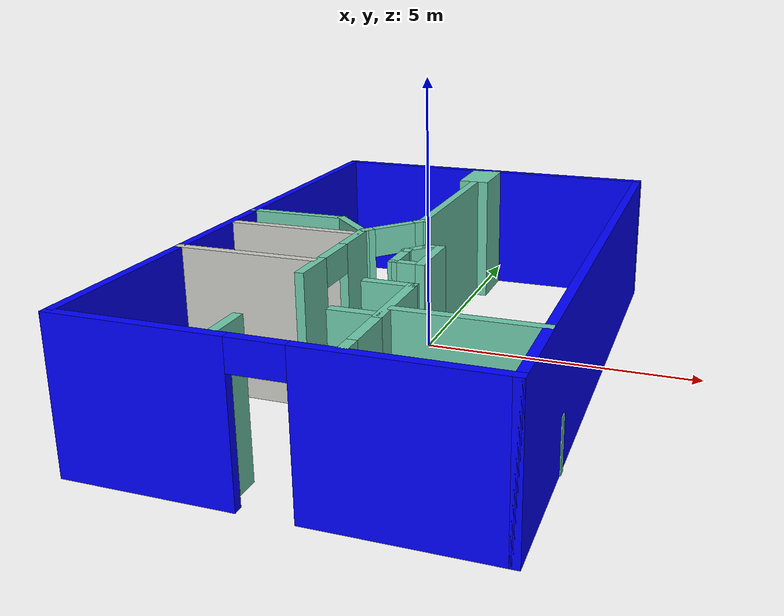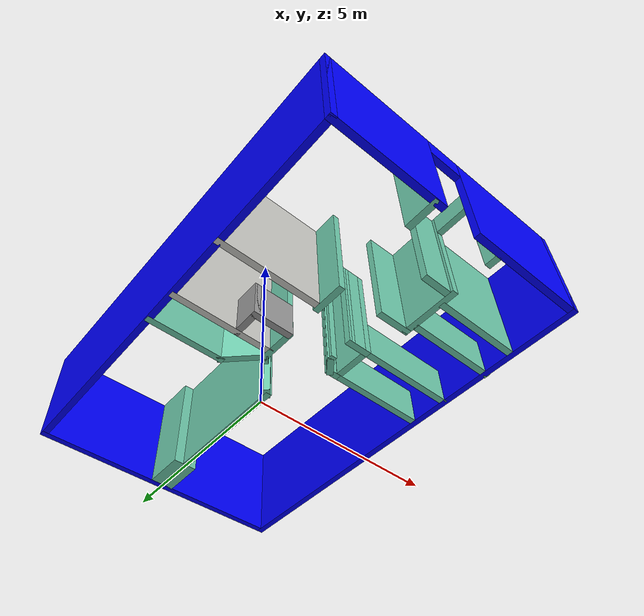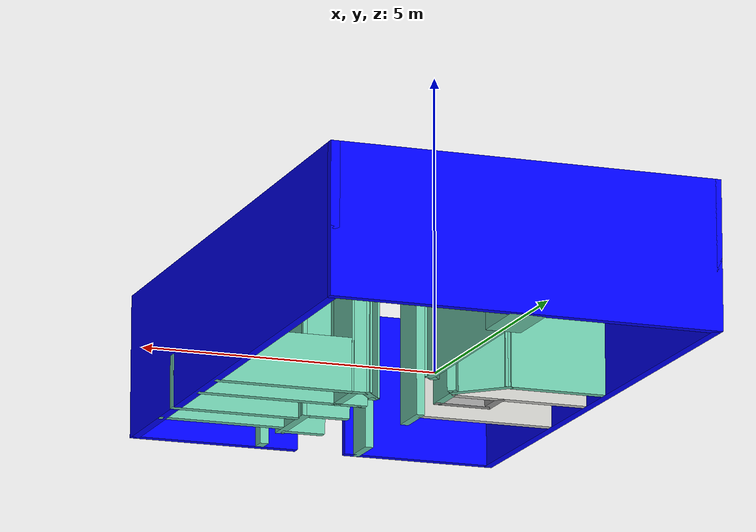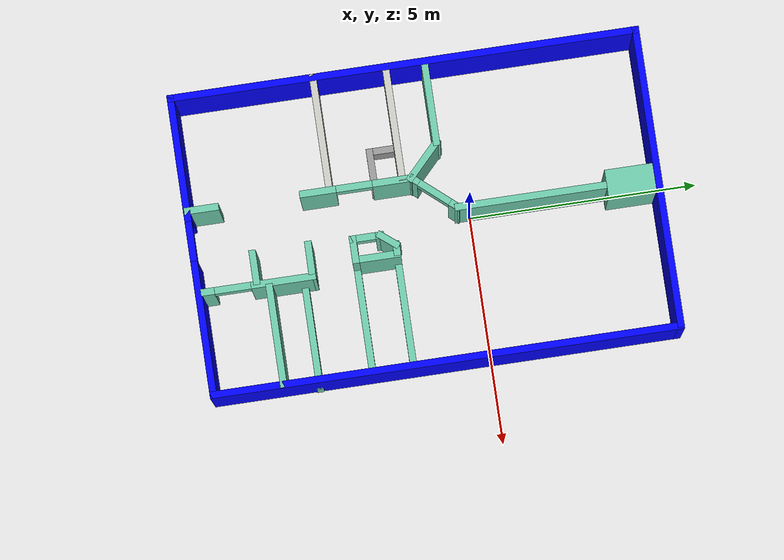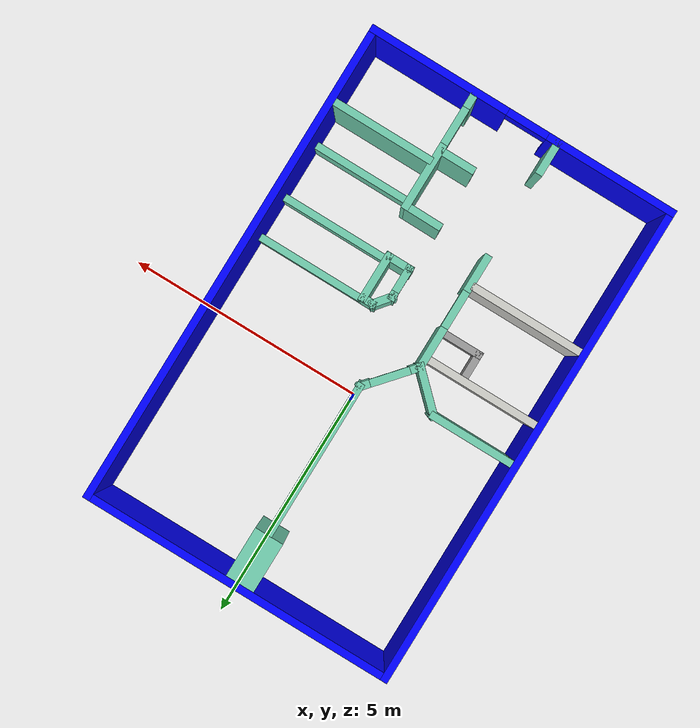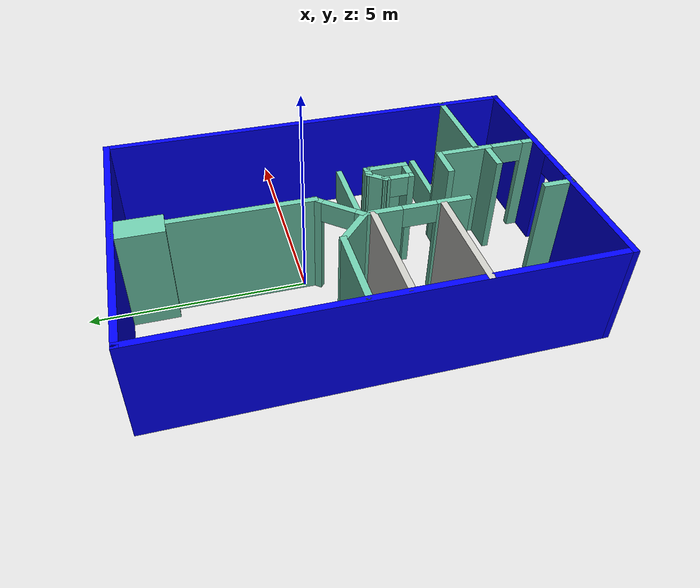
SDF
<?xml version='1.0'?>
<sdf version='1.6'>
  <model name='myApartment'>
    <pose frame=''>-0.012813 -0.95908 0 0 -0 0</pose>
    <link name='Wall_43'>
      <pose frame=''>-0.008813 -5.05 0 0 -0 0</pose>
      <visual name='Wall_43_Visual_0'>
        <pose frame=''>-1.91902 0 1.25 0 -0 0</pose>
        <geometry>
          <box>
            <size>2.76196 0.15 2.5</size>
          </box>
        </geometry>
        <material>
          <script>
            <uri>file://media/materials/scripts/gazebo.material</uri>
            <name>Gazebo/Grey</name>
          </script>
          <ambient>0 0 1 1</ambient>
        </material>
        <meta>
          <layer>0</layer>
        </meta>
      </visual>
      <collision name='Wall_43_Collision_0'>
        <geometry>
          <box>
            <size>2.76196 0.15 2.5</size>
          </box>
        </geometry>
        <pose frame=''>-1.91902 0 1.25 0 -0 0</pose>
      </collision>
      <visual name='Wall_43_Visual_1'>
        <pose frame=''>1.81248 0 1.25 0 -0 0</pose>
        <geometry>
          <box>
            <size>2.97504 0.15 2.5</size>
          </box>
        </geometry>
        <material>
          <script>
            <uri>file://media/materials/scripts/gazebo.material</uri>
            <name>Gazebo/Grey</name>
          </script>
          <ambient>0 0 1 1</ambient>
        </material>
        <meta>
          <layer>0</layer>
        </meta>
      </visual>
      <collision name='Wall_43_Collision_1'>
        <geometry>
          <box>
            <size>2.97504 0.15 2.5</size>
          </box>
        </geometry>
        <pose frame=''>1.81248 0 1.25 0 -0 0</pose>
      </collision>
      <visual name='Wall_43_Visual_2'>
        <pose frame=''>-0.106539 0 2.25 0 -0 0</pose>
        <geometry>
          <box>
            <size>0.863 0.15 0.5</size>
          </box>
        </geometry>
        <material>
          <script>
            <uri>file://media/materials/scripts/gazebo.material</uri>
            <name>Gazebo/Grey</name>
          </script>
          <ambient>0 0 1 1</ambient>
        </material>
        <meta>
          <layer>0</layer>
        </meta>
      </visual>
      <collision name='Wall_43_Collision_2'>
        <geometry>
          <box>
            <size>0.863 0.15 0.5</size>
          </box>
        </geometry>
        <pose frame=''>-0.106539 0 2.25 0 -0 0</pose>
      </collision>
    </link>
    <link name='Wall_45'>
      <collision name='Wall_45_Collision'>
        <geometry>
          <box>
            <size>10.25 0.15 2.5</size>
          </box>
        </geometry>
        <pose frame=''>0 0 1.25 0 -0 0</pose>
      </collision>
      <visual name='Wall_45_Visual'>
        <pose frame=''>0 0 1.25 0 -0 0</pose>
        <geometry>
          <box>
            <size>10.25 0.15 2.5</size>
          </box>
        </geometry>
        <material>
          <script>
            <uri>file://media/materials/scripts/gazebo.material</uri>
            <name>Gazebo/Grey</name>
          </script>
          <ambient>0 0 1 1</ambient>
        </material>
        <meta>
          <layer>0</layer>
        </meta>
      </visual>
      <pose frame=''>-3.23381 0 0 0 -0 1.5708</pose>
    </link>
    <link name='Wall_47'>
      <collision name='Wall_47_Collision'>
        <geometry>
          <box>
            <size>10.25 0.15 2.5</size>
          </box>
        </geometry>
        <pose frame=''>0 0 1.25 0 -0 0</pose>
      </collision>
      <visual name='Wall_47_Visual'>
        <pose frame=''>0 0 1.25 0 -0 0</pose>
        <geometry>
          <box>
            <size>10.25 0.15 2.5</size>
          </box>
        </geometry>
        <material>
          <script>
            <uri>file://media/materials/scripts/gazebo.material</uri>
            <name>Gazebo/Grey</name>
          </script>
          <ambient>0 0 1 1</ambient>
        </material>
        <meta>
          <layer>0</layer>
        </meta>
      </visual>
      <pose frame=''>3.21619 0 0 0 -0 1.5708</pose>
    </link>
    <link name='Wall_49'>
      <collision name='Wall_49_Collision'>
        <geometry>
          <box>
            <size>6.6 0.15 2.5</size>
          </box>
        </geometry>
        <pose frame=''>0 0 1.25 0 -0 0</pose>
      </collision>
      <visual name='Wall_49_Visual'>
        <pose frame=''>0 0 1.25 0 -0 0</pose>
        <geometry>
          <box>
            <size>6.6 0.15 2.5</size>
          </box>
        </geometry>
        <material>
          <script>
            <uri>file://media/materials/scripts/gazebo.material</uri>
            <name>Gazebo/Grey</name>
          </script>
          <ambient>0 0 1 1</ambient>
        </material>
        <meta>
          <layer>0</layer>
        </meta>
      </visual>
      <pose frame=''>-0.008813 5.05 0 0 -0 0</pose>
    </link>
    <link name='Wall_51'>
      <collision name='Wall_51_Collision'>
        <geometry>
          <box>
            <size>3.3 0.15 2.5</size>
          </box>
        </geometry>
        <pose frame=''>0 0 1.25 0 -0 0</pose>
      </collision>
      <visual name='Wall_51_Visual'>
        <pose frame=''>0 0 1.25 0 -0 0</pose>
        <geometry>
          <box>
            <size>3.3 0.15 2.5</size>
          </box>
        </geometry>
        <material>
          <script>
            <uri>file://media/materials/scripts/gazebo.material</uri>
            <name>Gazebo/Grey</name>
          </script>
          <ambient>0.435294 0.796078 0.67451 1</ambient>
        </material>
        <meta>
          <layer>0</layer>
        </meta>
      </visual>
      <pose frame=''>-0.007935 2.28619 0 0 0 -1.5708</pose>
    </link>
    <link name='Wall_53'>
      <pose frame=''>-0.38178 0.276036 0 0 0 -2.28056</pose>
      <visual name='Wall_53_Visual_0'>
        <pose frame=''>-0.512108 0 1.25 0 -0 0</pose>
        <geometry>
          <box>
            <size>0.273158 0.15 2.5</size>
          </box>
        </geometry>
        <material>
          <script>
            <uri>file://media/materials/scripts/gazebo.material</uri>
            <name>Gazebo/Grey</name>
          </script>
          <ambient>0.435294 0.796078 0.67451 1</ambient>
        </material>
        <meta>
          <layer>0</layer>
        </meta>
      </visual>
      <collision name='Wall_53_Collision_0'>
        <geometry>
          <box>
            <size>0.273158 0.15 2.5</size>
          </box>
        </geometry>
        <pose frame=''>-0.512108 0 1.25 0 -0 0</pose>
      </collision>
      <visual name='Wall_53_Visual_1'>
        <pose frame=''>0.530079 0 1.25 0 -0 0</pose>
        <geometry>
          <box>
            <size>0.237216 0.15 2.5</size>
          </box>
        </geometry>
        <material>
          <script>
            <uri>file://media/materials/scripts/gazebo.material</uri>
            <name>Gazebo/Grey</name>
          </script>
          <ambient>0.435294 0.796078 0.67451 1</ambient>
        </material>
        <meta>
          <layer>0</layer>
        </meta>
      </visual>
      <collision name='Wall_53_Collision_1'>
        <geometry>
          <box>
            <size>0.237216 0.15 2.5</size>
          </box>
        </geometry>
        <pose frame=''>0.530079 0 1.25 0 -0 0</pose>
      </collision>
      <visual name='Wall_53_Visual_2'>
        <pose frame=''>0.017971 0 2.25 0 -0 0</pose>
        <geometry>
          <box>
            <size>0.787 0.15 0.5</size>
          </box>
        </geometry>
        <material>
          <script>
            <uri>file://media/materials/scripts/gazebo.material</uri>
            <name>Gazebo/Grey</name>
          </script>
          <ambient>0.435294 0.796078 0.67451 1</ambient>
        </material>
        <meta>
          <layer>0</layer>
        </meta>
      </visual>
      <collision name='Wall_53_Collision_2'>
        <geometry>
          <box>
            <size>0.787 0.15 0.5</size>
          </box>
        </geometry>
        <pose frame=''>0.017971 0 2.25 0 -0 0</pose>
      </collision>
    </link>
    <link name='Wall_55'>
      <collision name='Wall_55_Collision'>
        <geometry>
          <box>
            <size>1.9 0.15 2.5</size>
          </box>
        </geometry>
        <pose frame=''>0 0 1.25 0 -0 0</pose>
      </collision>
      <visual name='Wall_55_Visual'>
        <pose frame=''>0 0 1.25 0 -0 0</pose>
        <geometry>
          <box>
            <size>1.9 0.15 2.5</size>
          </box>
        </geometry>
        <material>
          <script>
            <uri>file://media/materials/scripts/gazebo.material</uri>
            <name>Gazebo/Grey</name>
          </script>
          <ambient>0.435294 0.796078 0.67451 1</ambient>
        </material>
        <meta>
          <layer>0</layer>
        </meta>
      </visual>
      <pose frame=''>-2.33557 0.458424 0 0 -0 0</pose>
    </link>
    <link name='Wall_57'>
      <collision name='Wall_57_Collision'>
        <geometry>
          <box>
            <size>1.10227 0.15 2.5</size>
          </box>
        </geometry>
        <pose frame=''>0 0 1.25 0 -0 0</pose>
      </collision>
      <visual name='Wall_57_Visual'>
        <pose frame=''>0 0 1.25 0 -0 0</pose>
        <geometry>
          <box>
            <size>1.10227 0.15 2.5</size>
          </box>
        </geometry>
        <material>
          <script>
            <uri>file://media/materials/scripts/gazebo.material</uri>
            <name>Gazebo/Grey</name>
          </script>
          <ambient>0.435294 0.796078 0.67451 1</ambient>
        </material>
        <meta>
          <layer>0</layer>
        </meta>
      </visual>
      <pose frame=''>-1.11622 0.129598 0 0 0 -0.762334</pose>
    </link>
    <link name='Wall_59'>
      <pose frame=''>-0.771864 -1.36203 0 0 0 -1.5708</pose>
      <visual name='Wall_59_Visual_0'>
        <pose frame=''>-0.788458 0 1.25 0 -0 0</pose>
        <geometry>
          <box>
            <size>0.923084 0.15 2.5</size>
          </box>
        </geometry>
        <material>
          <script>
            <uri>file://media/materials/scripts/gazebo.material</uri>
            <name>Gazebo/Grey</name>
          </script>
          <ambient>0.435294 0.796078 0.67451 1</ambient>
        </material>
        <meta>
          <layer>0</layer>
        </meta>
      </visual>
      <collision name='Wall_59_Collision_0'>
        <geometry>
          <box>
            <size>0.923084 0.15 2.5</size>
          </box>
        </geometry>
        <pose frame=''>-0.788458 0 1.25 0 -0 0</pose>
      </collision>
      <visual name='Wall_59_Visual_1'>
        <pose frame=''>0.855042 0 1.25 0 -0 0</pose>
        <geometry>
          <box>
            <size>0.789916 0.15 2.5</size>
          </box>
        </geometry>
        <material>
          <script>
            <uri>file://media/materials/scripts/gazebo.material</uri>
            <name>Gazebo/Grey</name>
          </script>
          <ambient>0.435294 0.796078 0.67451 1</ambient>
        </material>
        <meta>
          <layer>0</layer>
        </meta>
      </visual>
      <collision name='Wall_59_Collision_1'>
        <geometry>
          <box>
            <size>0.789916 0.15 2.5</size>
          </box>
        </geometry>
        <pose frame=''>0.855042 0 1.25 0 -0 0</pose>
      </collision>
      <visual name='Wall_59_Visual_2'>
        <pose frame=''>0.066584 0 2.25 0 -0 0</pose>
        <geometry>
          <box>
            <size>0.787 0.15 0.5</size>
          </box>
        </geometry>
        <material>
          <script>
            <uri>file://media/materials/scripts/gazebo.material</uri>
            <name>Gazebo/Grey</name>
          </script>
          <ambient>0.435294 0.796078 0.67451 1</ambient>
        </material>
        <meta>
          <layer>0</layer>
        </meta>
      </visual>
      <collision name='Wall_59_Collision_2'>
        <geometry>
          <box>
            <size>0.787 0.15 0.5</size>
          </box>
        </geometry>
        <pose frame=''>0.066584 0 2.25 0 -0 0</pose>
      </collision>
    </link>
    <link name='Wall_61'>
      <collision name='Wall_61_Collision'>
        <geometry>
          <box>
            <size>2.5 0.15 2.5</size>
          </box>
        </geometry>
        <pose frame=''>0 0 1.25 0 -0 0</pose>
      </collision>
      <visual name='Wall_61_Visual'>
        <pose frame=''>0 0 1.25 0 -0 0</pose>
        <geometry>
          <box>
            <size>2.5 0.15 2.5</size>
          </box>
        </geometry>
        <material>
          <script>
            <uri>file://media/materials/scripts/gazebo.material</uri>
            <name>Gazebo/CeilingTiled</name>
          </script>
          <ambient>1 1 1 1</ambient>
        </material>
        <meta>
          <layer>0</layer>
        </meta>
      </visual>
      <pose frame=''>-2.05565 -1.96316 0 0 -0 0</pose>
    </link>
    <link name='Wall_63'>
      <collision name='Wall_63_Collision'>
        <geometry>
          <box>
            <size>2.5 0.15 2.5</size>
          </box>
        </geometry>
        <pose frame=''>0 0 1.25 0 -0 0</pose>
      </collision>
      <visual name='Wall_63_Visual'>
        <pose frame=''>0 0 1.25 0 -0 0</pose>
        <geometry>
          <box>
            <size>2.5 0.15 2.5</size>
          </box>
        </geometry>
        <material>
          <script>
            <uri>file://media/materials/scripts/gazebo.material</uri>
            <name>Gazebo/CeilingTiled</name>
          </script>
          <ambient>1 1 1 1</ambient>
        </material>
        <meta>
          <layer>0</layer>
        </meta>
      </visual>
      <pose frame=''>-2.00031 -0.382654 0 0 -0 0</pose>
    </link>
    <link name='Wall_65'>
      <collision name='Wall_65_Collision'>
        <geometry>
          <box>
            <size>0.75 0.15 2.5</size>
          </box>
        </geometry>
        <pose frame=''>0 0 1.25 0 -0 0</pose>
      </collision>
      <visual name='Wall_65_Visual'>
        <pose frame=''>0 0 1.25 0 -0 0</pose>
        <geometry>
          <box>
            <size>0.75 0.15 2.5</size>
          </box>
        </geometry>
        <material>
          <script>
            <uri>file://media/materials/scripts/gazebo.material</uri>
            <name>Gazebo/Grey</name>
          </script>
          <ambient>0.435294 0.796078 0.67451 1</ambient>
        </material>
        <meta>
          <layer>0</layer>
        </meta>
      </visual>
      <pose frame=''>-0.772788 -4.7331 0 0 -0 1.5708</pose>
    </link>
    <link name='Wall_67'>
      <collision name='Wall_67_Collision'>
        <geometry>
          <box>
            <size>2.25 0.15 2.5</size>
          </box>
        </geometry>
        <pose frame=''>0 0 1.25 0 -0 0</pose>
      </collision>
      <visual name='Wall_67_Visual'>
        <pose frame=''>0 0 1.25 0 -0 0</pose>
        <geometry>
          <box>
            <size>2.25 0.15 2.5</size>
          </box>
        </geometry>
        <material>
          <script>
            <uri>file://media/materials/scripts/gazebo.material</uri>
            <name>Gazebo/Grey</name>
          </script>
          <ambient>0.435294 0.796078 0.67451 1</ambient>
        </material>
        <meta>
          <layer>0</layer>
        </meta>
      </visual>
      <pose frame=''>2.15531 -3.53426 0 0 -0 3.14159</pose>
    </link>
    <link name='Wall_71'>
      <pose frame=''>1.01051 -3.75737 0 0 0 -1.5708</pose>
      <visual name='Wall_71_Visual_0'>
        <pose frame=''>-0.539996 0 1.25 0 -0 0</pose>
        <geometry>
          <box>
            <size>1.40789 0.15 2.5</size>
          </box>
        </geometry>
        <material>
          <script>
            <uri>file://media/materials/scripts/gazebo.material</uri>
            <name>Gazebo/Grey</name>
          </script>
          <ambient>0.435294 0.796078 0.67451 1</ambient>
        </material>
        <meta>
          <layer>0</layer>
        </meta>
      </visual>
      <collision name='Wall_71_Collision_0'>
        <geometry>
          <box>
            <size>1.40789 0.15 2.5</size>
          </box>
        </geometry>
        <pose frame=''>-0.539996 0 1.25 0 -0 0</pose>
      </collision>
      <visual name='Wall_71_Visual_1'>
        <pose frame=''>1.09745 0 1.25 0 -0 0</pose>
        <geometry>
          <box>
            <size>0.292991 0.15 2.5</size>
          </box>
        </geometry>
        <material>
          <script>
            <uri>file://media/materials/scripts/gazebo.material</uri>
            <name>Gazebo/Grey</name>
          </script>
          <ambient>0.435294 0.796078 0.67451 1</ambient>
        </material>
        <meta>
          <layer>0</layer>
        </meta>
      </visual>
      <collision name='Wall_71_Collision_1'>
        <geometry>
          <box>
            <size>0.292991 0.15 2.5</size>
          </box>
        </geometry>
        <pose frame=''>1.09745 0 1.25 0 -0 0</pose>
      </collision>
      <visual name='Wall_71_Visual_2'>
        <pose frame=''>0.55745 0 2.25 0 -0 0</pose>
        <geometry>
          <box>
            <size>0.787 0.15 0.5</size>
          </box>
        </geometry>
        <material>
          <script>
            <uri>file://media/materials/scripts/gazebo.material</uri>
            <name>Gazebo/Grey</name>
          </script>
          <ambient>0.435294 0.796078 0.67451 1</ambient>
        </material>
        <meta>
          <layer>0</layer>
        </meta>
      </visual>
      <collision name='Wall_71_Collision_2'>
        <geometry>
          <box>
            <size>0.787 0.15 0.5</size>
          </box>
        </geometry>
        <pose frame=''>0.55745 0 2.25 0 -0 0</pose>
      </collision>
    </link>
    <link name='Wall_73'>
      <collision name='Wall_73_Collision'>
        <geometry>
          <box>
            <size>0.841205 0.15 2.5</size>
          </box>
        </geometry>
        <pose frame=''>0 0 1.25 0 -0 0</pose>
      </collision>
      <visual name='Wall_73_Visual'>
        <pose frame=''>0 0 1.25 0 -0 0</pose>
        <geometry>
          <box>
            <size>0.841205 0.15 2.5</size>
          </box>
        </geometry>
        <material>
          <script>
            <uri>file://media/materials/scripts/gazebo.material</uri>
            <name>Gazebo/Grey</name>
          </script>
          <ambient>0.435294 0.796078 0.67451 1</ambient>
        </material>
        <meta>
          <layer>0</layer>
        </meta>
      </visual>
      <pose frame=''>0.664925 -2.5854 0 0 0 -0.008772</pose>
    </link>
    <link name='Wall_75'>
      <collision name='Wall_75_Collision'>
        <geometry>
          <box>
            <size>0.75 0.15 2.5</size>
          </box>
        </geometry>
        <pose frame=''>0 0 1.25 0 -0 0</pose>
      </collision>
      <visual name='Wall_75_Visual'>
        <pose frame=''>0 0 1.25 0 -0 0</pose>
        <geometry>
          <box>
            <size>0.75 0.15 2.5</size>
          </box>
        </geometry>
        <material>
          <script>
            <uri>file://media/materials/scripts/gazebo.material</uri>
            <name>Gazebo/Grey</name>
          </script>
          <ambient>0.435294 0.796078 0.67451 1</ambient>
        </material>
        <meta>
          <layer>0</layer>
        </meta>
      </visual>
      <pose frame=''>0.637525 -3.7889 0 0 -0 0</pose>
    </link>
    <link name='Wall_77'>
      <pose frame=''>0.349273 -1.32325 0 0 -0 1.5708</pose>
      <visual name='Wall_77_Visual_0'>
        <pose frame=''>-0.320215 0 1.25 0 -0 0</pose>
        <geometry>
          <box>
            <size>0.109569 0.15 2.5</size>
          </box>
        </geometry>
        <material>
          <script>
            <uri>file://media/materials/scripts/gazebo.material</uri>
            <name>Gazebo/Grey</name>
          </script>
          <ambient>0.435294 0.796078 0.67451 1</ambient>
        </material>
        <meta>
          <layer>0</layer>
        </meta>
      </visual>
      <collision name='Wall_77_Collision_0'>
        <geometry>
          <box>
            <size>0.109569 0.15 2.5</size>
          </box>
        </geometry>
        <pose frame=''>-0.320215 0 1.25 0 -0 0</pose>
      </collision>
      <visual name='Wall_77_Visual_1'>
        <pose frame=''>0.284785 0 1.25 0 -0 0</pose>
        <geometry>
          <box>
            <size>0.180431 0.15 2.5</size>
          </box>
        </geometry>
        <material>
          <script>
            <uri>file://media/materials/scripts/gazebo.material</uri>
            <name>Gazebo/Grey</name>
          </script>
          <ambient>0.435294 0.796078 0.67451 1</ambient>
        </material>
        <meta>
          <layer>0</layer>
        </meta>
      </visual>
      <collision name='Wall_77_Collision_1'>
        <geometry>
          <box>
            <size>0.180431 0.15 2.5</size>
          </box>
        </geometry>
        <pose frame=''>0.284785 0 1.25 0 -0 0</pose>
      </collision>
      <visual name='Wall_77_Visual_2'>
        <pose frame=''>-0.035431 0 2.25 0 -0 0</pose>
        <geometry>
          <box>
            <size>0.46 0.15 0.5</size>
          </box>
        </geometry>
        <material>
          <script>
            <uri>file://media/materials/scripts/gazebo.material</uri>
            <name>Gazebo/Grey</name>
          </script>
          <ambient>0.435294 0.796078 0.67451 1</ambient>
        </material>
        <meta>
          <layer>0</layer>
        </meta>
      </visual>
      <collision name='Wall_77_Collision_2'>
        <geometry>
          <box>
            <size>0.46 0.15 0.5</size>
          </box>
        </geometry>
        <pose frame=''>-0.035431 0 2.25 0 -0 0</pose>
      </collision>
    </link>
    <link name='Wall_78'>
      <collision name='Wall_78_Collision'>
        <geometry>
          <box>
            <size>0.538402 0.15 2.5</size>
          </box>
        </geometry>
        <pose frame=''>0 0 1.25 0 -0 0</pose>
      </collision>
      <visual name='Wall_78_Visual'>
        <pose frame=''>0 0 1.25 0 -0 0</pose>
        <geometry>
          <box>
            <size>0.538402 0.15 2.5</size>
          </box>
        </geometry>
        <material>
          <script>
            <uri>file://media/materials/scripts/gazebo.material</uri>
            <name>Gazebo/Grey</name>
          </script>
          <ambient>0.435294 0.796078 0.67451 1</ambient>
        </material>
        <meta>
          <layer>0</layer>
        </meta>
      </visual>
      <pose frame=''>0.470532 -0.871556 0 0 -0 0.896431</pose>
    </link>
    <link name='Wall_79'>
      <collision name='Wall_79_Collision'>
        <geometry>
          <box>
            <size>0.32 0.15 2.5</size>
          </box>
        </geometry>
        <pose frame=''>0 0 1.25 0 -0 0</pose>
      </collision>
      <visual name='Wall_79_Visual'>
        <pose frame=''>0 0 1.25 0 -0 0</pose>
        <geometry>
          <box>
            <size>0.32 0.15 2.5</size>
          </box>
        </geometry>
        <material>
          <script>
            <uri>file://media/materials/scripts/gazebo.material</uri>
            <name>Gazebo/Grey</name>
          </script>
          <ambient>0.435294 0.796078 0.67451 1</ambient>
        </material>
        <meta>
          <layer>0</layer>
        </meta>
      </visual>
      <pose frame=''>0.676791 -0.719865 0 0 -0 0</pose>
    </link>
    <link name='Wall_83'>
      <collision name='Wall_83_Collision'>
        <geometry>
          <box>
            <size>0.6 0.15 2.5</size>
          </box>
        </geometry>
        <pose frame=''>0 0 1.25 0 -0 0</pose>
      </collision>
      <visual name='Wall_83_Visual'>
        <pose frame=''>0 0 1.25 0 -0 0</pose>
        <geometry>
          <box>
            <size>0.6 0.15 2.5</size>
          </box>
        </geometry>
        <material>
          <script>
            <uri>file://media/materials/scripts/gazebo.material</uri>
            <name>Gazebo/Grey</name>
          </script>
          <ambient>0.435294 0.796078 0.67451 1</ambient>
        </material>
        <meta>
          <layer>0</layer>
        </meta>
      </visual>
      <pose frame=''>0.574043 -1.62308 0 0 -0 0.000727</pose>
    </link>
    <link name='Wall_85'>
      <collision name='Wall_85_Collision'>
        <geometry>
          <box>
            <size>1.05059 0.15 2.5</size>
          </box>
        </geometry>
        <pose frame=''>0 0 1.25 0 -0 0</pose>
      </collision>
      <visual name='Wall_85_Visual'>
        <pose frame=''>0 0 1.25 0 -0 0</pose>
        <geometry>
          <box>
            <size>1.05059 0.15 2.5</size>
          </box>
        </geometry>
        <material>
          <script>
            <uri>file://media/materials/scripts/gazebo.material</uri>
            <name>Gazebo/Grey</name>
          </script>
          <ambient>0.435294 0.796078 0.67451 1</ambient>
        </material>
        <meta>
          <layer>0</layer>
        </meta>
      </visual>
      <pose frame=''>0.798813 -1.17292 0 0 -0 1.5708</pose>
    </link>
    <link name='Wall_87'>
      <collision name='Wall_87_Collision'>
        <geometry>
          <box>
            <size>1.1 0.6 2.5</size>
          </box>
        </geometry>
        <pose frame=''>0 0 1.25 0 -0 0</pose>
      </collision>
      <visual name='Wall_87_Visual'>
        <pose frame=''>0 0 1.25 0 -0 0</pose>
        <geometry>
          <box>
            <size>1.1 0.6 2.5</size>
          </box>
        </geometry>
        <material>
          <script>
            <uri>file://media/materials/scripts/gazebo.material</uri>
            <name>Gazebo/Grey</name>
          </script>
          <ambient>0.435294 0.796078 0.67451 1</ambient>
        </material>
        <meta>
          <layer>0</layer>
        </meta>
      </visual>
      <pose frame=''>-0.029832 4.48175 0 0 0 -1.5708</pose>
    </link>
    <link name='Wall_89'>
      <collision name='Wall_89_Collision'>
        <geometry>
          <box>
            <size>2.5 0.15 0.91</size>
          </box>
        </geometry>
        <pose frame=''>0 0 0.455 0 -0 0</pose>
      </collision>
      <visual name='Wall_89_Visual'>
        <pose frame=''>0 0 0.455 0 -0 0</pose>
        <geometry>
          <box>
            <size>2.5 0.15 0.91</size>
          </box>
        </geometry>
        <material>
          <script>
            <uri>file://media/materials/scripts/gazebo.material</uri>
            <name>Gazebo/Grey</name>
          </script>
          <ambient>0.435294 0.796078 0.67451 1</ambient>
        </material>
        <meta>
          <layer>0</layer>
        </meta>
      </visual>
      <pose frame=''>1.97381 -0.72292 0 0 -0 0</pose>
    </link>
    <link name='Wall_91'>
      <collision name='Wall_91_Collision'>
        <geometry>
          <box>
            <size>2.5 0.15 0.91</size>
          </box>
        </geometry>
        <pose frame=''>0 0 0.455 0 -0 0</pose>
      </collision>
      <visual name='Wall_91_Visual'>
        <pose frame=''>0 0 0.455 0 -0 0</pose>
        <geometry>
          <box>
            <size>2.5 0.15 0.91</size>
          </box>
        </geometry>
        <material>
          <script>
            <uri>file://media/materials/scripts/gazebo.material</uri>
            <name>Gazebo/Grey</name>
          </script>
          <ambient>0.435294 0.796078 0.67451 1</ambient>
        </material>
        <meta>
          <layer>0</layer>
        </meta>
      </visual>
      <pose frame=''>1.97381 -1.62292 0 0 -0 0</pose>
    </link>
    <link name='Wall_96'>
      <collision name='Wall_96_Collision'>
        <geometry>
          <box>
            <size>2.25 0.15 0.91</size>
          </box>
        </geometry>
        <pose frame=''>0 0 0.455 0 -0 0</pose>
      </collision>
      <visual name='Wall_96_Visual'>
        <pose frame=''>0 0 0.455 0 -0 0</pose>
        <geometry>
          <box>
            <size>2.25 0.15 0.91</size>
          </box>
        </geometry>
        <material>
          <script>
            <uri>file://media/materials/scripts/gazebo.material</uri>
            <name>Gazebo/Grey</name>
          </script>
          <ambient>0.435294 0.796078 0.67451 1</ambient>
        </material>
        <meta>
          <layer>0</layer>
        </meta>
      </visual>
      <pose frame=''>2.18381 -2.79792 0 0 -0 3.14159</pose>
    </link>
    <link name='Wall_98'>
      <collision name='Wall_98_Collision'>
        <geometry>
          <box>
            <size>0.75 0.15 0.914</size>
          </box>
        </geometry>
        <pose frame=''>0 0 0.457 0 -0 0</pose>
      </collision>
      <visual name='Wall_98_Visual'>
        <pose frame=''>0 0 0.457 0 -0 0</pose>
        <geometry>
          <box>
            <size>0.75 0.15 0.914</size>
          </box>
        </geometry>
        <material>
          <script>
            <uri>file://media/materials/scripts/gazebo.material</uri>
            <name>Gazebo/Grey</name>
          </script>
          <ambient>1 1 1 1</ambient>
        </material>
        <meta>
          <layer>0</layer>
        </meta>
      </visual>
      <pose frame=''>-1.64819 -0.68992 0 0 0 -1.5708</pose>
    </link>
    <link name='Wall_99'>
      <collision name='Wall_99_Collision'>
        <geometry>
          <box>
            <size>1 0.15 0.914</size>
          </box>
        </geometry>
        <pose frame=''>0 0 0.457 0 -0 0</pose>
      </collision>
      <visual name='Wall_99_Visual'>
        <pose frame=''>0 0 0.457 0 -0 0</pose>
        <geometry>
          <box>
            <size>1 0.15 0.914</size>
          </box>
        </geometry>
        <material>
          <script>
            <uri>file://media/materials/scripts/gazebo.material</uri>
            <name>Gazebo/Grey</name>
          </script>
          <ambient>1 1 1 1</ambient>
        </material>
        <meta>
          <layer>0</layer>
        </meta>
      </visual>
      <pose frame=''>-1.22319 -0.98992 0 0 -0 0</pose>
    </link>
    <static>1</static>
  </model>
</sdf>
